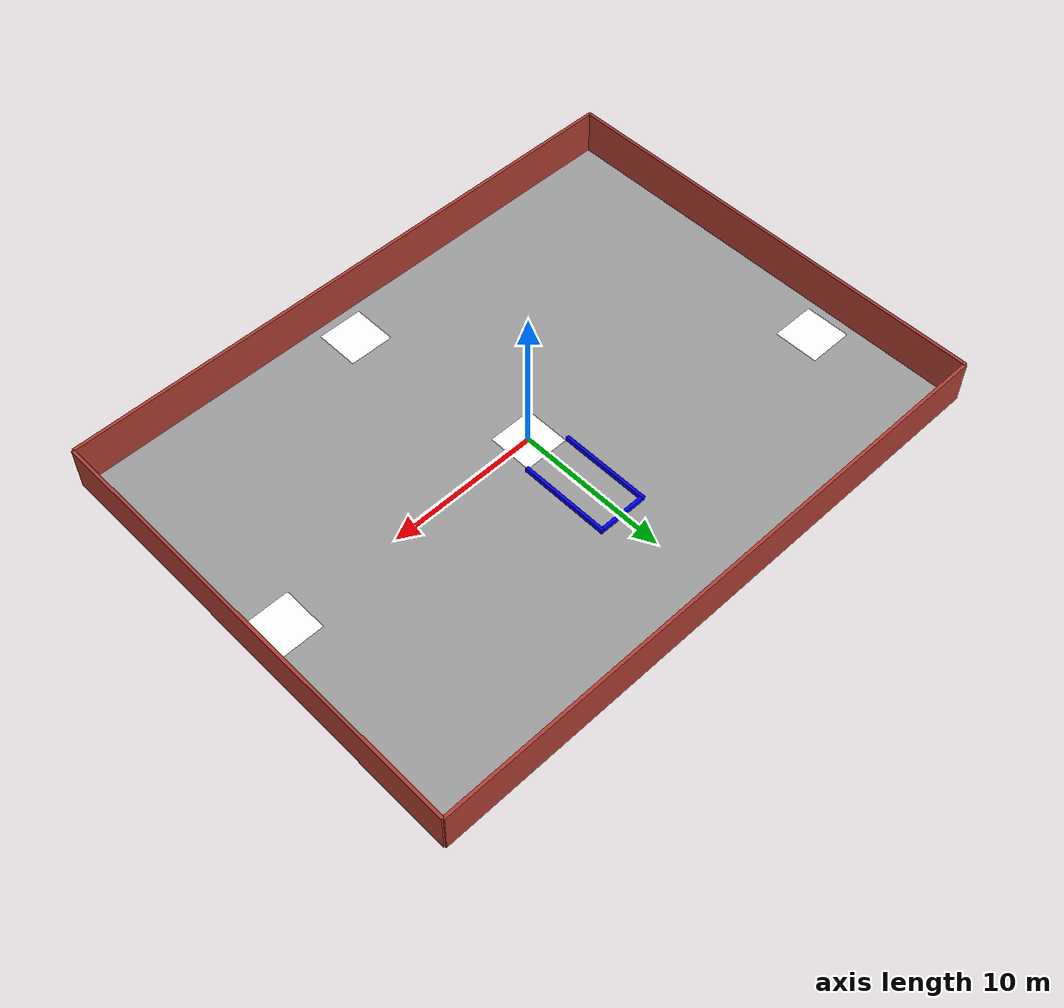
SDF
<?xml version="1.0" ?>

<!--Beskrivning: Detta är världen som roboten ska navigera sig i  -->
<!-- Dokumentation för taggarna: http://sdformat.org/spec?ver=1.12&elem=visual -->

<sdf version="1.10">
  <world name="warehouse_40x30">
    <gravity>0 0 -9.81</gravity>
    <render_engine>ogre2</render_engine>

    <scene>
      <ambient>0.45 0.45 0.45 1</ambient>
      <background>0.75 0.80 0.85 1</background>
    </scene>

    <!-- Ljus -->
    <light name="sun" type="directional">
      <pose>0 0 12 0 0 0</pose>
      <diffuse>1 1 1 1</diffuse>
      <specular>0.1 0.1 0.1 1</specular>
      <direction>-0.4 0.2 -1</direction>
      <cast_shadows>false</cast_shadows>
    </light>

  <!-- Himmel ljus för att fylla upp golvet-->
  <light type="point" name="sky_fill_center"> <!-- Skrivet med hjälp av chatgpt-->
    <pose>0 0 12 0 0 0</pose>
    <diffuse>0.75 0.80 0.95 1</diffuse>
    <specular>0.05 0.05 0.05 1</specular>
    <cast_shadows>false</cast_shadows>
    <attenuation>
      <range>120</range>
      <constant>0.9</constant>
      <linear>0.01</linear>
      <quadratic>0.001</quadratic>
    </attenuation>
  </light>

    <!-- Golv: 40 x 30 m betongplatta (slät, ingen textur) -->
    <!-- Boxens topp ligger vid z=0 -->
    <model name="floor">
      <static>true</static>
      <pose>0 0 -0.05 0 0 0</pose>
      <link name="link">
        <collision name="col">
          <geometry><box><size>40 30 0.10</size></box></geometry>
        </collision>
        <visual name="vis">
          <geometry><box><size>40 30 0.10</size></box></geometry>
          <material>
            <ambient>0.62 0.62 0.62 1</ambient>
            <diffuse>0.62 0.62 0.62 1</diffuse>
            <specular>0.02 0.02 0.02 1</specular>
            <pbr><metal><metalness>0.0</metalness><roughness>0.9</roughness></metal></pbr>
          </material>
        </visual>
      </link>
    </model>

    <!-- Väggar: tjocklek 0.2 m, höjd 3.0 m -->
    <!-- Innerväggarnas plan ligger vid x=±19.9, y=±14.9 -->
    <model name="wall_front">
      <static>true</static>
      <pose>0 15 1.5 0 0 0</pose>
      <link name="link">
        <collision name="c"><geometry><box><size>40 0.2 3.0</size></box></geometry></collision>
        <visual name="v">
          <geometry><box><size>40 0.2 3.0</size></box></geometry>
          <material><ambient>0.60 0.20 0.20 1</ambient><diffuse>0.70 0.25 0.20 1</diffuse><specular>0.02 0.02 0.02 1</specular><pbr><metal><metalness>0.0</metalness><roughness>0.85</roughness></metal></pbr></material>
        </visual>
      </link>
    </model>

    <model name="wall_back">
      <static>true</static>
      <pose>0 -15 1.5 0 0 0</pose>
      <link name="link">
        <collision name="c"><geometry><box><size>40 0.2 3.0</size></box></geometry></collision>
        <visual name="v">
          <geometry><box><size>40 0.2 3.0</size></box></geometry>
          <material><ambient>0.60 0.20 0.20 1</ambient><diffuse>0.70 0.25 0.20 1</diffuse><specular>0.02 0.02 0.02 1</specular><pbr><metal><metalness>0.0</metalness><roughness>0.85</roughness></metal></pbr></material>
        </visual>
      </link>
    </model>

    <model name="wall_left">
      <static>true</static>
      <pose>-20 0 1.5 0 0 0</pose>
      <link name="link">
        <collision name="c"><geometry><box><size>0.2 30 3.0</size></box></geometry></collision>
        <visual name="v">
          <geometry><box><size>0.2 30 3.0</size></box></geometry>
          <material><ambient>0.60 0.20 0.20 1</ambient><diffuse>0.70 0.25 0.20 1</diffuse><specular>0.02 0.02 0.02 1</specular><pbr><metal><metalness>0.0</metalness><roughness>0.85</roughness></metal></pbr></material>
        </visual>
      </link>
    </model>

    <model name="wall_right">
      <static>true</static>
      <pose>20 0 1.5 0 0 0</pose>
      <link name="link">
        <collision name="c"><geometry><box><size>0.2 30 3.0</size></box></geometry></collision>
        <visual name="v">
          <geometry><box><size>0.2 30 3.0</size></box></geometry>
          <material><ambient>0.60 0.20 0.20 1</ambient><diffuse>0.70 0.25 0.20 1</diffuse><specular>0.02 0.02 0.02 1</specular><pbr><metal><metalness>0.0</metalness><roughness>0.85</roughness></metal></pbr></material>
        </visual>
      </link>
    </model>

    <!-- B) Mitt på golvet (exempel): 3x3 m -->
    <model name="coil_collection">
      <static>true</static>
      <pose>-17.85 6 0.002 0 0 0</pose>
      <link name="link">
        <visual name="vis">
          <pose>0 0 0.0001 0 0 1.57</pose>
          <geometry>
            <box><size>3.0 3.0 0.0001</size></box>
          </geometry>
          <material>
            <pbr>
              <metal>
              <albedo_map>file:///home/erikhagglund/images/unlodading__station.png</albedo_map>
              <roughness>1.0</roughness>
              <metalness>0.0</metalness>
              </metal>
            </pbr>
            <ambient>1.0 1.0 1.0 1.0</ambient>
            <diffuse>1.0 1.0 1.0 1.0</diffuse>
          </material>
        </visual>

      </link>
    </model>

    <!--Unloading Station-->
    <model name="coil_unloading">
      <static>true</static>
      <pose>2 -12.85 0.002 0 0 0</pose>
      <link name="link">
        <!-- Det syngliga från en länk -->
        <visual name="vis">

          <!-- Formen och storleken på det viusella objektet -->
          <geometry>
            <box><size>3.0 3.0 0.0001</size></box>
          </geometry>
          <pose>0 0 0.0001 0 0 1.57</pose>
          <material>
            <pbr>
              <metal>
              <albedo_map>file:///home/erikhagglund/images/loading__station.png</albedo_map>
              <roughness>1.0</roughness>
              <metalness>0.0</metalness>
              </metal>
            </pbr>
            <ambient>1.0 1.0 1.0 1.0</ambient>
            <diffuse> 1.0 1.0 1.0 1.0</diffuse>
          </material>
        </visual>
      </link>
    </model>

    <model name="trimming_station">
      <static>true</static>
      <pose>0 0 0.002 0 0 0</pose>
      <link name="link">
        <visual name="vis">
          <pose>0 0 0.0001 0 0 1.57</pose>
          <geometry>
            <box><size>3.0 3.0 0.0001</size></box>
          </geometry>
          <material>
            <pbr>
              <metal>
              <albedo_map>file:///home/erikhagglund/images/trimming__station.png</albedo_map>
              <roughness>1.0</roughness>
              <metalness>0.0</metalness>
              </metal>
            </pbr>
            <ambient>1.0 1.0 1.0 1.0</ambient>
            <diffuse>1.0 1.0 1.0 1.0</diffuse>
          </material>
        </visual>
      </link>
      <link name="right_enclosure">
        <pose> </pose>
        <visual name="vis">
          <material>
            <ambient> 0 0 1 1 </ambient>
            <diffuse> 0 0 1 1 </diffuse>
          </material>
          <geometry>
            <box><size>6 0.2 0.6</size></box>
          </geometry>
           <pose>1.6 4.5 0 0 0 1.57</pose>
        </visual>
      </link>
      <link name="left_enclosure">
        <pose> </pose>
        <visual name="vis">
          <material>
            <ambient> 0 0 1 1 </ambient>
            <diffuse> 0 0 1 1 </diffuse>
          </material>
          <geometry>
            <box><size>6 0.2 0.6</size></box>
          </geometry>
           <pose>-1.6 4.5 0 0 0 1.57</pose>
        </visual>
      </link>
      <link name="top_enclosure">
        <pose> </pose>
        <visual name="vis">
          <material>
            <ambient> 0 0 1 1 </ambient>
            <diffuse> 0 0 1 1 </diffuse>
          </material>
          <geometry>
            <box><size>3 0.2 0.6</size></box>
          </geometry>
           <pose>0 7.4 0 0 0 0</pose>
        </visual>
      </link>
    </model>

    <model name="compacting_station">
      <static>true</static>
      <pose>17.85 0.0 0.002 0 0 0</pose>
      <link name="link">
        <visual name="vis">
          <pose>0 0 0.0001 0 0 1.57</pose>
          <geometry>
            <box><size>3.0 3.0 0.0001</size></box>
          </geometry>
          <material>
            <pbr>
              <metal>
              <albedo_map>file:///home/erikhagglund/images/compacting__station.png</albedo_map>
              <roughness>1.0</roughness>
              <metalness>0.0</metalness>
              </metal>
            </pbr>
            <ambient>1.0 1.0 1.0 1.0</ambient>
            <diffuse>1.0 1.0 1.0 1.0</diffuse>
          </material>
        </visual>
      </link>
    </model>

    <!--UTSEENDE, inställningar vid uppstart -->
    <gui fullscreen="0">
      <!-- sätter kameravyn -->
      <plugin filename="GzScene3D" name="3D View">
        <engine>ogre2</engine>
        <!-- x y z roll pitch yaw-->
        <camera_pose>0 0 25   0 1.57 1.57</camera_pose>
      </plugin>
    </gui>

  </world>
</sdf>
